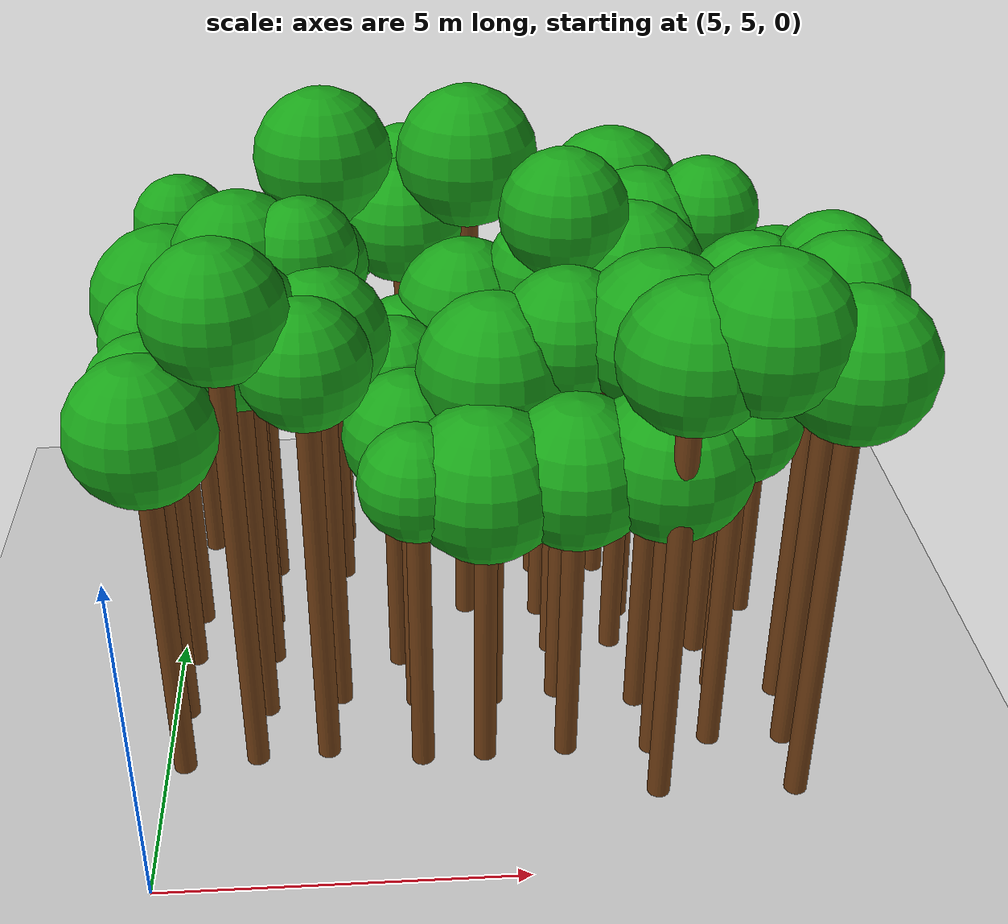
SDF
<sdf version="1.6">
 <world name="forest_world">
  <include><uri>model://sun</uri></include>
  <include><uri>model://ground_plane</uri></include>
  <model name="tree_1771_trunk">
   <static>true</static>
   <pose>5.23 7.35 2.51 0 0 0</pose>
   <link name="link">
    <collision name="collision">
     <geometry><cylinder><radius>0.16</radius><length>5.03</length></cylinder></geometry>
    </collision>
    <visual name="visual">
     <geometry><cylinder><radius>0.16</radius><length>5.03</length></cylinder></geometry>
     <material><ambient>0.35 0.20 0.05 1</ambient><diffuse>0.45 0.25 0.08 1</diffuse></material>
    </visual>
   </link>
  </model>
  <model name="tree_1771_leaf">
   <static>true</static>
   <pose>5.23 7.35 5.61 0 0 0</pose>
   <link name="link">
    <collision name="collision"><geometry><sphere><radius>0.98</radius></sphere></geometry></collision>
    <visual name="visual">
     <geometry><sphere><radius>0.98</radius></sphere></geometry>
     <material><ambient>0.05 0.45 0.05 1</ambient><diffuse>0.10 0.65 0.10 1</diffuse></material>
    </visual>
   </link>
  </model>
  <model name="tree_1772_trunk">
   <static>true</static>
   <pose>5.18 8.50 2.45 0 0 0</pose>
   <link name="link">
    <collision name="collision">
     <geometry><cylinder><radius>0.16</radius><length>4.91</length></cylinder></geometry>
    </collision>
    <visual name="visual">
     <geometry><cylinder><radius>0.16</radius><length>4.91</length></cylinder></geometry>
     <material><ambient>0.35 0.20 0.05 1</ambient><diffuse>0.45 0.25 0.08 1</diffuse></material>
    </visual>
   </link>
  </model>
  <model name="tree_1772_leaf">
   <static>true</static>
   <pose>5.18 8.50 5.43 0 0 0</pose>
   <link name="link">
    <collision name="collision"><geometry><sphere><radius>0.87</radius></sphere></geometry></collision>
    <visual name="visual">
     <geometry><sphere><radius>0.87</radius></sphere></geometry>
     <material><ambient>0.05 0.45 0.05 1</ambient><diffuse>0.10 0.65 0.10 1</diffuse></material>
    </visual>
   </link>
  </model>
  <model name="tree_1773_trunk">
   <static>true</static>
   <pose>5.19 9.73 2.55 0 0 0</pose>
   <link name="link">
    <collision name="collision">
     <geometry><cylinder><radius>0.16</radius><length>5.11</length></cylinder></geometry>
    </collision>
    <visual name="visual">
     <geometry><cylinder><radius>0.16</radius><length>5.11</length></cylinder></geometry>
     <material><ambient>0.35 0.20 0.05 1</ambient><diffuse>0.45 0.25 0.08 1</diffuse></material>
    </visual>
   </link>
  </model>
  <model name="tree_1773_leaf">
   <static>true</static>
   <pose>5.19 9.73 5.60 0 0 0</pose>
   <link name="link">
    <collision name="collision"><geometry><sphere><radius>0.83</radius></sphere></geometry></collision>
    <visual name="visual">
     <geometry><sphere><radius>0.83</radius></sphere></geometry>
     <material><ambient>0.05 0.45 0.05 1</ambient><diffuse>0.10 0.65 0.10 1</diffuse></material>
    </visual>
   </link>
  </model>
  <model name="tree_1774_trunk">
   <static>true</static>
   <pose>5.22 10.76 2.52 0 0 0</pose>
   <link name="link">
    <collision name="collision">
     <geometry><cylinder><radius>0.16</radius><length>5.03</length></cylinder></geometry>
    </collision>
    <visual name="visual">
     <geometry><cylinder><radius>0.16</radius><length>5.03</length></cylinder></geometry>
     <material><ambient>0.35 0.20 0.05 1</ambient><diffuse>0.45 0.25 0.08 1</diffuse></material>
    </visual>
   </link>
  </model>
  <model name="tree_1774_leaf">
   <static>true</static>
   <pose>5.22 10.76 5.69 0 0 0</pose>
   <link name="link">
    <collision name="collision"><geometry><sphere><radius>1.10</radius></sphere></geometry></collision>
    <visual name="visual">
     <geometry><sphere><radius>1.10</radius></sphere></geometry>
     <material><ambient>0.05 0.45 0.05 1</ambient><diffuse>0.10 0.65 0.10 1</diffuse></material>
    </visual>
   </link>
  </model>
  <model name="tree_1776_trunk">
   <static>true</static>
   <pose>5.26 12.77 2.79 0 0 0</pose>
   <link name="link">
    <collision name="collision">
     <geometry><cylinder><radius>0.16</radius><length>5.57</length></cylinder></geometry>
    </collision>
    <visual name="visual">
     <geometry><cylinder><radius>0.16</radius><length>5.57</length></cylinder></geometry>
     <material><ambient>0.35 0.20 0.05 1</ambient><diffuse>0.45 0.25 0.08 1</diffuse></material>
    </visual>
   </link>
  </model>
  <model name="tree_1776_leaf">
   <static>true</static>
   <pose>5.26 12.77 6.01 0 0 0</pose>
   <link name="link">
    <collision name="collision"><geometry><sphere><radius>0.73</radius></sphere></geometry></collision>
    <visual name="visual">
     <geometry><sphere><radius>0.73</radius></sphere></geometry>
     <material><ambient>0.05 0.45 0.05 1</ambient><diffuse>0.10 0.65 0.10 1</diffuse></material>
    </visual>
   </link>
  </model>
  <model name="tree_1826_trunk">
   <static>true</static>
   <pose>6.26 7.46 3.31 0 0 0</pose>
   <link name="link">
    <collision name="collision">
     <geometry><cylinder><radius>0.16</radius><length>6.63</length></cylinder></geometry>
    </collision>
    <visual name="visual">
     <geometry><cylinder><radius>0.16</radius><length>6.63</length></cylinder></geometry>
     <material><ambient>0.35 0.20 0.05 1</ambient><diffuse>0.45 0.25 0.08 1</diffuse></material>
    </visual>
   </link>
  </model>
  <model name="tree_1826_leaf">
   <static>true</static>
   <pose>6.26 7.46 7.17 0 0 0</pose>
   <link name="link">
    <collision name="collision"><geometry><sphere><radius>0.91</radius></sphere></geometry></collision>
    <visual name="visual">
     <geometry><sphere><radius>0.91</radius></sphere></geometry>
     <material><ambient>0.05 0.45 0.05 1</ambient><diffuse>0.10 0.65 0.10 1</diffuse></material>
    </visual>
   </link>
  </model>
  <model name="tree_1827_trunk">
   <static>true</static>
   <pose>6.36 8.48 2.87 0 0 0</pose>
   <link name="link">
    <collision name="collision">
     <geometry><cylinder><radius>0.16</radius><length>5.73</length></cylinder></geometry>
    </collision>
    <visual name="visual">
     <geometry><cylinder><radius>0.16</radius><length>5.73</length></cylinder></geometry>
     <material><ambient>0.35 0.20 0.05 1</ambient><diffuse>0.45 0.25 0.08 1</diffuse></material>
    </visual>
   </link>
  </model>
  <model name="tree_1827_leaf">
   <static>true</static>
   <pose>6.36 8.48 6.34 0 0 0</pose>
   <link name="link">
    <collision name="collision"><geometry><sphere><radius>1.01</radius></sphere></geometry></collision>
    <visual name="visual">
     <geometry><sphere><radius>1.01</radius></sphere></geometry>
     <material><ambient>0.05 0.45 0.05 1</ambient><diffuse>0.10 0.65 0.10 1</diffuse></material>
    </visual>
   </link>
  </model>
  <model name="tree_1828_trunk">
   <static>true</static>
   <pose>6.40 9.71 3.12 0 0 0</pose>
   <link name="link">
    <collision name="collision">
     <geometry><cylinder><radius>0.16</radius><length>6.24</length></cylinder></geometry>
    </collision>
    <visual name="visual">
     <geometry><cylinder><radius>0.16</radius><length>6.24</length></cylinder></geometry>
     <material><ambient>0.35 0.20 0.05 1</ambient><diffuse>0.45 0.25 0.08 1</diffuse></material>
    </visual>
   </link>
  </model>
  <model name="tree_1828_leaf">
   <static>true</static>
   <pose>6.40 9.71 6.80 0 0 0</pose>
   <link name="link">
    <collision name="collision"><geometry><sphere><radius>0.93</radius></sphere></geometry></collision>
    <visual name="visual">
     <geometry><sphere><radius>0.93</radius></sphere></geometry>
     <material><ambient>0.05 0.45 0.05 1</ambient><diffuse>0.10 0.65 0.10 1</diffuse></material>
    </visual>
   </link>
  </model>
  <model name="tree_1829_trunk">
   <static>true</static>
   <pose>6.35 10.60 2.45 0 0 0</pose>
   <link name="link">
    <collision name="collision">
     <geometry><cylinder><radius>0.16</radius><length>4.89</length></cylinder></geometry>
    </collision>
    <visual name="visual">
     <geometry><cylinder><radius>0.16</radius><length>4.89</length></cylinder></geometry>
     <material><ambient>0.35 0.20 0.05 1</ambient><diffuse>0.45 0.25 0.08 1</diffuse></material>
    </visual>
   </link>
  </model>
  <model name="tree_1829_leaf">
   <static>true</static>
   <pose>6.35 10.60 5.36 0 0 0</pose>
   <link name="link">
    <collision name="collision"><geometry><sphere><radius>0.77</radius></sphere></geometry></collision>
    <visual name="visual">
     <geometry><sphere><radius>0.77</radius></sphere></geometry>
     <material><ambient>0.05 0.45 0.05 1</ambient><diffuse>0.10 0.65 0.10 1</diffuse></material>
    </visual>
   </link>
  </model>
  <model name="tree_1830_trunk">
   <static>true</static>
   <pose>6.37 11.96 2.48 0 0 0</pose>
   <link name="link">
    <collision name="collision">
     <geometry><cylinder><radius>0.16</radius><length>4.96</length></cylinder></geometry>
    </collision>
    <visual name="visual">
     <geometry><cylinder><radius>0.16</radius><length>4.96</length></cylinder></geometry>
     <material><ambient>0.35 0.20 0.05 1</ambient><diffuse>0.45 0.25 0.08 1</diffuse></material>
    </visual>
   </link>
  </model>
  <model name="tree_1830_leaf">
   <static>true</static>
   <pose>6.37 11.96 5.47 0 0 0</pose>
   <link name="link">
    <collision name="collision"><geometry><sphere><radius>0.86</radius></sphere></geometry></collision>
    <visual name="visual">
     <geometry><sphere><radius>0.86</radius></sphere></geometry>
     <material><ambient>0.05 0.45 0.05 1</ambient><diffuse>0.10 0.65 0.10 1</diffuse></material>
    </visual>
   </link>
  </model>
  <model name="tree_1881_trunk">
   <static>true</static>
   <pose>7.28 7.54 2.94 0 0 0</pose>
   <link name="link">
    <collision name="collision">
     <geometry><cylinder><radius>0.16</radius><length>5.88</length></cylinder></geometry>
    </collision>
    <visual name="visual">
     <geometry><cylinder><radius>0.16</radius><length>5.88</length></cylinder></geometry>
     <material><ambient>0.35 0.20 0.05 1</ambient><diffuse>0.45 0.25 0.08 1</diffuse></material>
    </visual>
   </link>
  </model>
  <model name="tree_1881_leaf">
   <static>true</static>
   <pose>7.28 7.54 6.38 0 0 0</pose>
   <link name="link">
    <collision name="collision"><geometry><sphere><radius>0.85</radius></sphere></geometry></collision>
    <visual name="visual">
     <geometry><sphere><radius>0.85</radius></sphere></geometry>
     <material><ambient>0.05 0.45 0.05 1</ambient><diffuse>0.10 0.65 0.10 1</diffuse></material>
    </visual>
   </link>
  </model>
  <model name="tree_1882_trunk">
   <static>true</static>
   <pose>7.45 8.68 2.82 0 0 0</pose>
   <link name="link">
    <collision name="collision">
     <geometry><cylinder><radius>0.16</radius><length>5.63</length></cylinder></geometry>
    </collision>
    <visual name="visual">
     <geometry><cylinder><radius>0.16</radius><length>5.63</length></cylinder></geometry>
     <material><ambient>0.35 0.20 0.05 1</ambient><diffuse>0.45 0.25 0.08 1</diffuse></material>
    </visual>
   </link>
  </model>
  <model name="tree_1882_leaf">
   <static>true</static>
   <pose>7.45 8.68 6.18 0 0 0</pose>
   <link name="link">
    <collision name="collision"><geometry><sphere><radius>0.91</radius></sphere></geometry></collision>
    <visual name="visual">
     <geometry><sphere><radius>0.91</radius></sphere></geometry>
     <material><ambient>0.05 0.45 0.05 1</ambient><diffuse>0.10 0.65 0.10 1</diffuse></material>
    </visual>
   </link>
  </model>
  <model name="tree_1883_trunk">
   <static>true</static>
   <pose>7.24 9.52 3.26 0 0 0</pose>
   <link name="link">
    <collision name="collision">
     <geometry><cylinder><radius>0.16</radius><length>6.53</length></cylinder></geometry>
    </collision>
    <visual name="visual">
     <geometry><cylinder><radius>0.16</radius><length>6.53</length></cylinder></geometry>
     <material><ambient>0.35 0.20 0.05 1</ambient><diffuse>0.45 0.25 0.08 1</diffuse></material>
    </visual>
   </link>
  </model>
  <model name="tree_1883_leaf">
   <static>true</static>
   <pose>7.24 9.52 6.97 0 0 0</pose>
   <link name="link">
    <collision name="collision"><geometry><sphere><radius>0.74</radius></sphere></geometry></collision>
    <visual name="visual">
     <geometry><sphere><radius>0.74</radius></sphere></geometry>
     <material><ambient>0.05 0.45 0.05 1</ambient><diffuse>0.10 0.65 0.10 1</diffuse></material>
    </visual>
   </link>
  </model>
  <model name="tree_1884_trunk">
   <static>true</static>
   <pose>7.32 10.82 2.86 0 0 0</pose>
   <link name="link">
    <collision name="collision">
     <geometry><cylinder><radius>0.16</radius><length>5.73</length></cylinder></geometry>
    </collision>
    <visual name="visual">
     <geometry><cylinder><radius>0.16</radius><length>5.73</length></cylinder></geometry>
     <material><ambient>0.35 0.20 0.05 1</ambient><diffuse>0.45 0.25 0.08 1</diffuse></material>
    </visual>
   </link>
  </model>
  <model name="tree_1884_leaf">
   <static>true</static>
   <pose>7.32 10.82 6.19 0 0 0</pose>
   <link name="link">
    <collision name="collision"><geometry><sphere><radius>0.77</radius></sphere></geometry></collision>
    <visual name="visual">
     <geometry><sphere><radius>0.77</radius></sphere></geometry>
     <material><ambient>0.05 0.45 0.05 1</ambient><diffuse>0.10 0.65 0.10 1</diffuse></material>
    </visual>
   </link>
  </model>
  <model name="tree_1885_trunk">
   <static>true</static>
   <pose>7.48 11.84 3.40 0 0 0</pose>
   <link name="link">
    <collision name="collision">
     <geometry><cylinder><radius>0.16</radius><length>6.79</length></cylinder></geometry>
    </collision>
    <visual name="visual">
     <geometry><cylinder><radius>0.16</radius><length>6.79</length></cylinder></geometry>
     <material><ambient>0.35 0.20 0.05 1</ambient><diffuse>0.45 0.25 0.08 1</diffuse></material>
    </visual>
   </link>
  </model>
  <model name="tree_1885_leaf">
   <static>true</static>
   <pose>7.48 11.84 7.38 0 0 0</pose>
   <link name="link">
    <collision name="collision"><geometry><sphere><radius>0.99</radius></sphere></geometry></collision>
    <visual name="visual">
     <geometry><sphere><radius>0.99</radius></sphere></geometry>
     <material><ambient>0.05 0.45 0.05 1</ambient><diffuse>0.10 0.65 0.10 1</diffuse></material>
    </visual>
   </link>
  </model>
  <model name="tree_1886_trunk">
   <static>true</static>
   <pose>7.49 12.87 2.57 0 0 0</pose>
   <link name="link">
    <collision name="collision">
     <geometry><cylinder><radius>0.16</radius><length>5.13</length></cylinder></geometry>
    </collision>
    <visual name="visual">
     <geometry><cylinder><radius>0.16</radius><length>5.13</length></cylinder></geometry>
     <material><ambient>0.35 0.20 0.05 1</ambient><diffuse>0.45 0.25 0.08 1</diffuse></material>
    </visual>
   </link>
  </model>
  <model name="tree_1886_leaf">
   <static>true</static>
   <pose>7.49 12.87 5.60 0 0 0</pose>
   <link name="link">
    <collision name="collision"><geometry><sphere><radius>0.78</radius></sphere></geometry></collision>
    <visual name="visual">
     <geometry><sphere><radius>0.78</radius></sphere></geometry>
     <material><ambient>0.05 0.45 0.05 1</ambient><diffuse>0.10 0.65 0.10 1</diffuse></material>
    </visual>
   </link>
  </model>
  <model name="tree_1936_trunk">
   <static>true</static>
   <pose>8.63 7.31 2.14 0 0 0</pose>
   <link name="link">
    <collision name="collision">
     <geometry><cylinder><radius>0.16</radius><length>4.27</length></cylinder></geometry>
    </collision>
    <visual name="visual">
     <geometry><cylinder><radius>0.16</radius><length>4.27</length></cylinder></geometry>
     <material><ambient>0.35 0.20 0.05 1</ambient><diffuse>0.45 0.25 0.08 1</diffuse></material>
    </visual>
   </link>
  </model>
  <model name="tree_1936_leaf">
   <static>true</static>
   <pose>8.63 7.31 4.74 0 0 0</pose>
   <link name="link">
    <collision name="collision"><geometry><sphere><radius>0.78</radius></sphere></geometry></collision>
    <visual name="visual">
     <geometry><sphere><radius>0.78</radius></sphere></geometry>
     <material><ambient>0.05 0.45 0.05 1</ambient><diffuse>0.10 0.65 0.10 1</diffuse></material>
    </visual>
   </link>
  </model>
  <model name="tree_1937_trunk">
   <static>true</static>
   <pose>8.58 8.54 2.07 0 0 0</pose>
   <link name="link">
    <collision name="collision">
     <geometry><cylinder><radius>0.16</radius><length>4.13</length></cylinder></geometry>
    </collision>
    <visual name="visual">
     <geometry><cylinder><radius>0.16</radius><length>4.13</length></cylinder></geometry>
     <material><ambient>0.35 0.20 0.05 1</ambient><diffuse>0.45 0.25 0.08 1</diffuse></material>
    </visual>
   </link>
  </model>
  <model name="tree_1937_leaf">
   <static>true</static>
   <pose>8.58 8.54 4.69 0 0 0</pose>
   <link name="link">
    <collision name="collision"><geometry><sphere><radius>0.93</radius></sphere></geometry></collision>
    <visual name="visual">
     <geometry><sphere><radius>0.93</radius></sphere></geometry>
     <material><ambient>0.05 0.45 0.05 1</ambient><diffuse>0.10 0.65 0.10 1</diffuse></material>
    </visual>
   </link>
  </model>
  <model name="tree_1938_trunk">
   <static>true</static>
   <pose>8.35 9.54 2.28 0 0 0</pose>
   <link name="link">
    <collision name="collision">
     <geometry><cylinder><radius>0.16</radius><length>4.57</length></cylinder></geometry>
    </collision>
    <visual name="visual">
     <geometry><cylinder><radius>0.16</radius><length>4.57</length></cylinder></geometry>
     <material><ambient>0.35 0.20 0.05 1</ambient><diffuse>0.45 0.25 0.08 1</diffuse></material>
    </visual>
   </link>
  </model>
  <model name="tree_1938_leaf">
   <static>true</static>
   <pose>8.35 9.54 5.07 0 0 0</pose>
   <link name="link">
    <collision name="collision"><geometry><sphere><radius>0.84</radius></sphere></geometry></collision>
    <visual name="visual">
     <geometry><sphere><radius>0.84</radius></sphere></geometry>
     <material><ambient>0.05 0.45 0.05 1</ambient><diffuse>0.10 0.65 0.10 1</diffuse></material>
    </visual>
   </link>
  </model>
  <model name="tree_1939_trunk">
   <static>true</static>
   <pose>8.66 10.54 2.10 0 0 0</pose>
   <link name="link">
    <collision name="collision">
     <geometry><cylinder><radius>0.16</radius><length>4.19</length></cylinder></geometry>
    </collision>
    <visual name="visual">
     <geometry><cylinder><radius>0.16</radius><length>4.19</length></cylinder></geometry>
     <material><ambient>0.35 0.20 0.05 1</ambient><diffuse>0.45 0.25 0.08 1</diffuse></material>
    </visual>
   </link>
  </model>
  <model name="tree_1939_leaf">
   <static>true</static>
   <pose>8.66 10.54 4.77 0 0 0</pose>
   <link name="link">
    <collision name="collision"><geometry><sphere><radius>0.96</radius></sphere></geometry></collision>
    <visual name="visual">
     <geometry><sphere><radius>0.96</radius></sphere></geometry>
     <material><ambient>0.05 0.45 0.05 1</ambient><diffuse>0.10 0.65 0.10 1</diffuse></material>
    </visual>
   </link>
  </model>
  <model name="tree_1940_trunk">
   <static>true</static>
   <pose>8.60 11.83 2.91 0 0 0</pose>
   <link name="link">
    <collision name="collision">
     <geometry><cylinder><radius>0.16</radius><length>5.83</length></cylinder></geometry>
    </collision>
    <visual name="visual">
     <geometry><cylinder><radius>0.16</radius><length>5.83</length></cylinder></geometry>
     <material><ambient>0.35 0.20 0.05 1</ambient><diffuse>0.45 0.25 0.08 1</diffuse></material>
    </visual>
   </link>
  </model>
  <model name="tree_1940_leaf">
   <static>true</static>
   <pose>8.60 11.83 6.37 0 0 0</pose>
   <link name="link">
    <collision name="collision"><geometry><sphere><radius>0.91</radius></sphere></geometry></collision>
    <visual name="visual">
     <geometry><sphere><radius>0.91</radius></sphere></geometry>
     <material><ambient>0.05 0.45 0.05 1</ambient><diffuse>0.10 0.65 0.10 1</diffuse></material>
    </visual>
   </link>
  </model>
  <model name="tree_1941_trunk">
   <static>true</static>
   <pose>8.65 12.77 3.13 0 0 0</pose>
   <link name="link">
    <collision name="collision">
     <geometry><cylinder><radius>0.16</radius><length>6.25</length></cylinder></geometry>
    </collision>
    <visual name="visual">
     <geometry><cylinder><radius>0.16</radius><length>6.25</length></cylinder></geometry>
     <material><ambient>0.35 0.20 0.05 1</ambient><diffuse>0.45 0.25 0.08 1</diffuse></material>
    </visual>
   </link>
  </model>
  <model name="tree_1941_leaf">
   <static>true</static>
   <pose>8.65 12.77 6.71 0 0 0</pose>
   <link name="link">
    <collision name="collision"><geometry><sphere><radius>0.76</radius></sphere></geometry></collision>
    <visual name="visual">
     <geometry><sphere><radius>0.76</radius></sphere></geometry>
     <material><ambient>0.05 0.45 0.05 1</ambient><diffuse>0.10 0.65 0.10 1</diffuse></material>
    </visual>
   </link>
  </model>
  <model name="tree_1991_trunk">
   <static>true</static>
   <pose>9.52 7.35 2.02 0 0 0</pose>
   <link name="link">
    <collision name="collision">
     <geometry><cylinder><radius>0.16</radius><length>4.05</length></cylinder></geometry>
    </collision>
    <visual name="visual">
     <geometry><cylinder><radius>0.16</radius><length>4.05</length></cylinder></geometry>
     <material><ambient>0.35 0.20 0.05 1</ambient><diffuse>0.45 0.25 0.08 1</diffuse></material>
    </visual>
   </link>
  </model>
  <model name="tree_1991_leaf">
   <static>true</static>
   <pose>9.52 7.35 4.69 0 0 0</pose>
   <link name="link">
    <collision name="collision"><geometry><sphere><radius>1.07</radius></sphere></geometry></collision>
    <visual name="visual">
     <geometry><sphere><radius>1.07</radius></sphere></geometry>
     <material><ambient>0.05 0.45 0.05 1</ambient><diffuse>0.10 0.65 0.10 1</diffuse></material>
    </visual>
   </link>
  </model>
  <model name="tree_1992_trunk">
   <static>true</static>
   <pose>9.70 8.52 2.53 0 0 0</pose>
   <link name="link">
    <collision name="collision">
     <geometry><cylinder><radius>0.16</radius><length>5.06</length></cylinder></geometry>
    </collision>
    <visual name="visual">
     <geometry><cylinder><radius>0.16</radius><length>5.06</length></cylinder></geometry>
     <material><ambient>0.35 0.20 0.05 1</ambient><diffuse>0.45 0.25 0.08 1</diffuse></material>
    </visual>
   </link>
  </model>
  <model name="tree_1992_leaf">
   <static>true</static>
   <pose>9.70 8.52 5.69 0 0 0</pose>
   <link name="link">
    <collision name="collision"><geometry><sphere><radius>1.04</radius></sphere></geometry></collision>
    <visual name="visual">
     <geometry><sphere><radius>1.04</radius></sphere></geometry>
     <material><ambient>0.05 0.45 0.05 1</ambient><diffuse>0.10 0.65 0.10 1</diffuse></material>
    </visual>
   </link>
  </model>
  <model name="tree_1993_trunk">
   <static>true</static>
   <pose>9.76 9.62 2.22 0 0 0</pose>
   <link name="link">
    <collision name="collision">
     <geometry><cylinder><radius>0.16</radius><length>4.44</length></cylinder></geometry>
    </collision>
    <visual name="visual">
     <geometry><cylinder><radius>0.16</radius><length>4.44</length></cylinder></geometry>
     <material><ambient>0.35 0.20 0.05 1</ambient><diffuse>0.45 0.25 0.08 1</diffuse></material>
    </visual>
   </link>
  </model>
  <model name="tree_1993_leaf">
   <static>true</static>
   <pose>9.76 9.62 4.97 0 0 0</pose>
   <link name="link">
    <collision name="collision"><geometry><sphere><radius>0.87</radius></sphere></geometry></collision>
    <visual name="visual">
     <geometry><sphere><radius>0.87</radius></sphere></geometry>
     <material><ambient>0.05 0.45 0.05 1</ambient><diffuse>0.10 0.65 0.10 1</diffuse></material>
    </visual>
   </link>
  </model>
  <model name="tree_1994_trunk">
   <static>true</static>
   <pose>9.44 10.78 2.46 0 0 0</pose>
   <link name="link">
    <collision name="collision">
     <geometry><cylinder><radius>0.16</radius><length>4.91</length></cylinder></geometry>
    </collision>
    <visual name="visual">
     <geometry><cylinder><radius>0.16</radius><length>4.91</length></cylinder></geometry>
     <material><ambient>0.35 0.20 0.05 1</ambient><diffuse>0.45 0.25 0.08 1</diffuse></material>
    </visual>
   </link>
  </model>
  <model name="tree_1994_leaf">
   <static>true</static>
   <pose>9.44 10.78 5.50 0 0 0</pose>
   <link name="link">
    <collision name="collision"><geometry><sphere><radius>0.98</radius></sphere></geometry></collision>
    <visual name="visual">
     <geometry><sphere><radius>0.98</radius></sphere></geometry>
     <material><ambient>0.05 0.45 0.05 1</ambient><diffuse>0.10 0.65 0.10 1</diffuse></material>
    </visual>
   </link>
  </model>
  <model name="tree_1995_trunk">
   <static>true</static>
   <pose>9.53 11.64 3.41 0 0 0</pose>
   <link name="link">
    <collision name="collision">
     <geometry><cylinder><radius>0.16</radius><length>6.82</length></cylinder></geometry>
    </collision>
    <visual name="visual">
     <geometry><cylinder><radius>0.16</radius><length>6.82</length></cylinder></geometry>
     <material><ambient>0.35 0.20 0.05 1</ambient><diffuse>0.45 0.25 0.08 1</diffuse></material>
    </visual>
   </link>
  </model>
  <model name="tree_1995_leaf">
   <static>true</static>
   <pose>9.53 11.64 7.42 0 0 0</pose>
   <link name="link">
    <collision name="collision"><geometry><sphere><radius>1.01</radius></sphere></geometry></collision>
    <visual name="visual">
     <geometry><sphere><radius>1.01</radius></sphere></geometry>
     <material><ambient>0.05 0.45 0.05 1</ambient><diffuse>0.10 0.65 0.10 1</diffuse></material>
    </visual>
   </link>
  </model>
  <model name="tree_1996_trunk">
   <static>true</static>
   <pose>9.57 13.00 2.51 0 0 0</pose>
   <link name="link">
    <collision name="collision">
     <geometry><cylinder><radius>0.16</radius><length>5.02</length></cylinder></geometry>
    </collision>
    <visual name="visual">
     <geometry><cylinder><radius>0.16</radius><length>5.02</length></cylinder></geometry>
     <material><ambient>0.35 0.20 0.05 1</ambient><diffuse>0.45 0.25 0.08 1</diffuse></material>
    </visual>
   </link>
  </model>
  <model name="tree_2046_trunk">
   <static>true</static>
   <pose>10.69 7.39 2.08 0 0 0</pose>
   <link name="link">
    <collision name="collision">
     <geometry><cylinder><radius>0.16</radius><length>4.16</length></cylinder></geometry>
    </collision>
    <visual name="visual">
     <geometry><cylinder><radius>0.16</radius><length>4.16</length></cylinder></geometry>
     <material><ambient>0.35 0.20 0.05 1</ambient><diffuse>0.45 0.25 0.08 1</diffuse></material>
    </visual>
   </link>
  </model>
  <model name="tree_2046_leaf">
   <static>true</static>
   <pose>10.69 7.39 4.78 0 0 0</pose>
   <link name="link">
    <collision name="collision"><geometry><sphere><radius>1.04</radius></sphere></geometry></collision>
    <visual name="visual">
     <geometry><sphere><radius>1.04</radius></sphere></geometry>
     <material><ambient>0.05 0.45 0.05 1</ambient><diffuse>0.10 0.65 0.10 1</diffuse></material>
    </visual>
   </link>
  </model>
  <model name="tree_2047_trunk">
   <static>true</static>
   <pose>10.67 8.64 2.78 0 0 0</pose>
   <link name="link">
    <collision name="collision">
     <geometry><cylinder><radius>0.16</radius><length>5.57</length></cylinder></geometry>
    </collision>
    <visual name="visual">
     <geometry><cylinder><radius>0.16</radius><length>5.57</length></cylinder></geometry>
     <material><ambient>0.35 0.20 0.05 1</ambient><diffuse>0.45 0.25 0.08 1</diffuse></material>
    </visual>
   </link>
  </model>
  <model name="tree_2047_leaf">
   <static>true</static>
   <pose>10.67 8.64 6.11 0 0 0</pose>
   <link name="link">
    <collision name="collision"><geometry><sphere><radius>0.91</radius></sphere></geometry></collision>
    <visual name="visual">
     <geometry><sphere><radius>0.91</radius></sphere></geometry>
     <material><ambient>0.05 0.45 0.05 1</ambient><diffuse>0.10 0.65 0.10 1</diffuse></material>
    </visual>
   </link>
  </model>
  <model name="tree_2048_trunk">
   <static>true</static>
   <pose>10.70 9.69 3.42 0 0 0</pose>
   <link name="link">
    <collision name="collision">
     <geometry><cylinder><radius>0.16</radius><length>6.84</length></cylinder></geometry>
    </collision>
    <visual name="visual">
     <geometry><cylinder><radius>0.16</radius><length>6.84</length></cylinder></geometry>
     <material><ambient>0.35 0.20 0.05 1</ambient><diffuse>0.45 0.25 0.08 1</diffuse></material>
    </visual>
   </link>
  </model>
  <model name="tree_2048_leaf">
   <static>true</static>
   <pose>10.70 9.69 7.36 0 0 0</pose>
   <link name="link">
    <collision name="collision"><geometry><sphere><radius>0.87</radius></sphere></geometry></collision>
    <visual name="visual">
     <geometry><sphere><radius>0.87</radius></sphere></geometry>
     <material><ambient>0.05 0.45 0.05 1</ambient><diffuse>0.10 0.65 0.10 1</diffuse></material>
    </visual>
   </link>
  </model>
  <model name="tree_2049_trunk">
   <static>true</static>
   <pose>10.60 10.64 2.75 0 0 0</pose>
   <link name="link">
    <collision name="collision">
     <geometry><cylinder><radius>0.16</radius><length>5.49</length></cylinder></geometry>
    </collision>
    <visual name="visual">
     <geometry><cylinder><radius>0.16</radius><length>5.49</length></cylinder></geometry>
     <material><ambient>0.35 0.20 0.05 1</ambient><diffuse>0.45 0.25 0.08 1</diffuse></material>
    </visual>
   </link>
  </model>
  <model name="tree_2049_leaf">
   <static>true</static>
   <pose>10.60 10.64 6.02 0 0 0</pose>
   <link name="link">
    <collision name="collision"><geometry><sphere><radius>0.88</radius></sphere></geometry></collision>
    <visual name="visual">
     <geometry><sphere><radius>0.88</radius></sphere></geometry>
     <material><ambient>0.05 0.45 0.05 1</ambient><diffuse>0.10 0.65 0.10 1</diffuse></material>
    </visual>
   </link>
  </model>
  <model name="tree_2050_trunk">
   <static>true</static>
   <pose>10.63 11.79 2.40 0 0 0</pose>
   <link name="link">
    <collision name="collision">
     <geometry><cylinder><radius>0.16</radius><length>4.80</length></cylinder></geometry>
    </collision>
    <visual name="visual">
     <geometry><cylinder><radius>0.16</radius><length>4.80</length></cylinder></geometry>
     <material><ambient>0.35 0.20 0.05 1</ambient><diffuse>0.45 0.25 0.08 1</diffuse></material>
    </visual>
   </link>
  </model>
  <model name="tree_2050_leaf">
   <static>true</static>
   <pose>10.63 11.79 5.34 0 0 0</pose>
   <link name="link">
    <collision name="collision"><geometry><sphere><radius>0.90</radius></sphere></geometry></collision>
    <visual name="visual">
     <geometry><sphere><radius>0.90</radius></sphere></geometry>
     <material><ambient>0.05 0.45 0.05 1</ambient><diffuse>0.10 0.65 0.10 1</diffuse></material>
    </visual>
   </link>
  </model>
  <model name="tree_2100_trunk">
   <static>true</static>
   <pose>11.90 6.46 3.17 0 0 0</pose>
   <link name="link">
    <collision name="collision">
     <geometry><cylinder><radius>0.16</radius><length>6.34</length></cylinder></geometry>
    </collision>
    <visual name="visual">
     <geometry><cylinder><radius>0.16</radius><length>6.34</length></cylinder></geometry>
     <material><ambient>0.35 0.20 0.05 1</ambient><diffuse>0.45 0.25 0.08 1</diffuse></material>
    </visual>
   </link>
  </model>
  <model name="tree_2100_leaf">
   <static>true</static>
   <pose>11.90 6.46 6.92 0 0 0</pose>
   <link name="link">
    <collision name="collision"><geometry><sphere><radius>0.96</radius></sphere></geometry></collision>
    <visual name="visual">
     <geometry><sphere><radius>0.96</radius></sphere></geometry>
     <material><ambient>0.05 0.45 0.05 1</ambient><diffuse>0.10 0.65 0.10 1</diffuse></material>
    </visual>
   </link>
  </model>
  <model name="tree_2101_trunk">
   <static>true</static>
   <pose>11.92 7.33 2.15 0 0 0</pose>
   <link name="link">
    <collision name="collision">
     <geometry><cylinder><radius>0.16</radius><length>4.29</length></cylinder></geometry>
    </collision>
    <visual name="visual">
     <geometry><cylinder><radius>0.16</radius><length>4.29</length></cylinder></geometry>
     <material><ambient>0.35 0.20 0.05 1</ambient><diffuse>0.45 0.25 0.08 1</diffuse></material>
    </visual>
   </link>
  </model>
  <model name="tree_2101_leaf">
   <static>true</static>
   <pose>11.92 7.33 4.95 0 0 0</pose>
   <link name="link">
    <collision name="collision"><geometry><sphere><radius>1.09</radius></sphere></geometry></collision>
    <visual name="visual">
     <geometry><sphere><radius>1.09</radius></sphere></geometry>
     <material><ambient>0.05 0.45 0.05 1</ambient><diffuse>0.10 0.65 0.10 1</diffuse></material>
    </visual>
   </link>
  </model>
  <model name="tree_2102_trunk">
   <static>true</static>
   <pose>11.84 8.37 2.79 0 0 0</pose>
   <link name="link">
    <collision name="collision">
     <geometry><cylinder><radius>0.16</radius><length>5.59</length></cylinder></geometry>
    </collision>
    <visual name="visual">
     <geometry><cylinder><radius>0.16</radius><length>5.59</length></cylinder></geometry>
     <material><ambient>0.35 0.20 0.05 1</ambient><diffuse>0.45 0.25 0.08 1</diffuse></material>
    </visual>
   </link>
  </model>
  <model name="tree_2102_leaf">
   <static>true</static>
   <pose>11.84 8.37 6.24 0 0 0</pose>
   <link name="link">
    <collision name="collision"><geometry><sphere><radius>1.09</radius></sphere></geometry></collision>
    <visual name="visual">
     <geometry><sphere><radius>1.09</radius></sphere></geometry>
     <material><ambient>0.05 0.45 0.05 1</ambient><diffuse>0.10 0.65 0.10 1</diffuse></material>
    </visual>
   </link>
  </model>
  <model name="tree_2103_trunk">
   <static>true</static>
   <pose>11.65 9.77 2.91 0 0 0</pose>
   <link name="link">
    <collision name="collision">
     <geometry><cylinder><radius>0.16</radius><length>5.82</length></cylinder></geometry>
    </collision>
    <visual name="visual">
     <geometry><cylinder><radius>0.16</radius><length>5.82</length></cylinder></geometry>
     <material><ambient>0.35 0.20 0.05 1</ambient><diffuse>0.45 0.25 0.08 1</diffuse></material>
    </visual>
   </link>
  </model>
  <model name="tree_2103_leaf">
   <static>true</static>
   <pose>11.65 9.77 6.42 0 0 0</pose>
   <link name="link">
    <collision name="collision"><geometry><sphere><radius>1.01</radius></sphere></geometry></collision>
    <visual name="visual">
     <geometry><sphere><radius>1.01</radius></sphere></geometry>
     <material><ambient>0.05 0.45 0.05 1</ambient><diffuse>0.10 0.65 0.10 1</diffuse></material>
    </visual>
   </link>
  </model>
  <model name="tree_2104_trunk">
   <static>true</static>
   <pose>11.87 10.53 2.96 0 0 0</pose>
   <link name="link">
    <collision name="collision">
     <geometry><cylinder><radius>0.16</radius><length>5.92</length></cylinder></geometry>
    </collision>
    <visual name="visual">
     <geometry><cylinder><radius>0.16</radius><length>5.92</length></cylinder></geometry>
     <material><ambient>0.35 0.20 0.05 1</ambient><diffuse>0.45 0.25 0.08 1</diffuse></material>
    </visual>
   </link>
  </model>
  <model name="tree_2104_leaf">
   <static>true</static>
   <pose>11.87 10.53 6.54 0 0 0</pose>
   <link name="link">
    <collision name="collision"><geometry><sphere><radius>1.04</radius></sphere></geometry></collision>
    <visual name="visual">
     <geometry><sphere><radius>1.04</radius></sphere></geometry>
     <material><ambient>0.05 0.45 0.05 1</ambient><diffuse>0.10 0.65 0.10 1</diffuse></material>
    </visual>
   </link>
  </model>
  <model name="tree_2105_trunk">
   <static>true</static>
   <pose>11.63 11.77 3.03 0 0 0</pose>
   <link name="link">
    <collision name="collision">
     <geometry><cylinder><radius>0.16</radius><length>6.06</length></cylinder></geometry>
    </collision>
    <visual name="visual">
     <geometry><cylinder><radius>0.16</radius><length>6.06</length></cylinder></geometry>
     <material><ambient>0.35 0.20 0.05 1</ambient><diffuse>0.45 0.25 0.08 1</diffuse></material>
    </visual>
   </link>
  </model>
  <model name="tree_2105_leaf">
   <static>true</static>
   <pose>11.63 11.77 6.68 0 0 0</pose>
   <link name="link">
    <collision name="collision"><geometry><sphere><radius>1.03</radius></sphere></geometry></collision>
    <visual name="visual">
     <geometry><sphere><radius>1.03</radius></sphere></geometry>
     <material><ambient>0.05 0.45 0.05 1</ambient><diffuse>0.10 0.65 0.10 1</diffuse></material>
    </visual>
   </link>
  </model>
  <model name="tree_2106_trunk">
   <static>true</static>
   <pose>11.70 12.72 2.23 0 0 0</pose>
   <link name="link">
    <collision name="collision">
     <geometry><cylinder><radius>0.16</radius><length>4.46</length></cylinder></geometry>
    </collision>
    <visual name="visual">
     <geometry><cylinder><radius>0.16</radius><length>4.46</length></cylinder></geometry>
     <material><ambient>0.35 0.20 0.05 1</ambient><diffuse>0.45 0.25 0.08 1</diffuse></material>
    </visual>
   </link>
  </model>
  <model name="tree_2106_leaf">
   <static>true</static>
   <pose>11.70 12.72 4.98 0 0 0</pose>
   <link name="link">
    <collision name="collision"><geometry><sphere><radius>0.86</radius></sphere></geometry></collision>
    <visual name="visual">
     <geometry><sphere><radius>0.86</radius></sphere></geometry>
     <material><ambient>0.05 0.45 0.05 1</ambient><diffuse>0.10 0.65 0.10 1</diffuse></material>
    </visual>
   </link>
  </model>
  <model name="tree_2155_leaf">
   <static>true</static>
   <pose>12.75 6.37 7.25 0 0 0</pose>
   <link name="link">
    <collision name="collision"><geometry><sphere><radius>1.00</radius></sphere></geometry></collision>
    <visual name="visual">
     <geometry><sphere><radius>1.00</radius></sphere></geometry>
     <material><ambient>0.05 0.45 0.05 1</ambient><diffuse>0.10 0.65 0.10 1</diffuse></material>
    </visual>
   </link>
  </model>
  <model name="tree_2156_trunk">
   <static>true</static>
   <pose>12.79 7.47 2.45 0 0 0</pose>
   <link name="link">
    <collision name="collision">
     <geometry><cylinder><radius>0.16</radius><length>4.90</length></cylinder></geometry>
    </collision>
    <visual name="visual">
     <geometry><cylinder><radius>0.16</radius><length>4.90</length></cylinder></geometry>
     <material><ambient>0.35 0.20 0.05 1</ambient><diffuse>0.45 0.25 0.08 1</diffuse></material>
    </visual>
   </link>
  </model>
  <model name="tree_2156_leaf">
   <static>true</static>
   <pose>12.79 7.47 5.37 0 0 0</pose>
   <link name="link">
    <collision name="collision"><geometry><sphere><radius>0.79</radius></sphere></geometry></collision>
    <visual name="visual">
     <geometry><sphere><radius>0.79</radius></sphere></geometry>
     <material><ambient>0.05 0.45 0.05 1</ambient><diffuse>0.10 0.65 0.10 1</diffuse></material>
    </visual>
   </link>
  </model>
  <model name="tree_2157_trunk">
   <static>true</static>
   <pose>13.06 8.67 3.01 0 0 0</pose>
   <link name="link">
    <collision name="collision">
     <geometry><cylinder><radius>0.16</radius><length>6.02</length></cylinder></geometry>
    </collision>
    <visual name="visual">
     <geometry><cylinder><radius>0.16</radius><length>6.02</length></cylinder></geometry>
     <material><ambient>0.35 0.20 0.05 1</ambient><diffuse>0.45 0.25 0.08 1</diffuse></material>
    </visual>
   </link>
  </model>
  <model name="tree_2157_leaf">
   <static>true</static>
   <pose>13.06 8.67 6.55 0 0 0</pose>
   <link name="link">
    <collision name="collision"><geometry><sphere><radius>0.87</radius></sphere></geometry></collision>
    <visual name="visual">
     <geometry><sphere><radius>0.87</radius></sphere></geometry>
     <material><ambient>0.05 0.45 0.05 1</ambient><diffuse>0.10 0.65 0.10 1</diffuse></material>
    </visual>
   </link>
  </model>
  <model name="tree_2158_trunk">
   <static>true</static>
   <pose>12.97 9.58 2.42 0 0 0</pose>
   <link name="link">
    <collision name="collision">
     <geometry><cylinder><radius>0.16</radius><length>4.85</length></cylinder></geometry>
    </collision>
    <visual name="visual">
     <geometry><cylinder><radius>0.16</radius><length>4.85</length></cylinder></geometry>
     <material><ambient>0.35 0.20 0.05 1</ambient><diffuse>0.45 0.25 0.08 1</diffuse></material>
    </visual>
   </link>
  </model>
  <model name="tree_2158_leaf">
   <static>true</static>
   <pose>12.97 9.58 5.49 0 0 0</pose>
   <link name="link">
    <collision name="collision"><geometry><sphere><radius>1.07</radius></sphere></geometry></collision>
    <visual name="visual">
     <geometry><sphere><radius>1.07</radius></sphere></geometry>
     <material><ambient>0.05 0.45 0.05 1</ambient><diffuse>0.10 0.65 0.10 1</diffuse></material>
    </visual>
   </link>
  </model>
  <model name="tree_2159_trunk">
   <static>true</static>
   <pose>12.76 10.55 3.24 0 0 0</pose>
   <link name="link">
    <collision name="collision">
     <geometry><cylinder><radius>0.16</radius><length>6.48</length></cylinder></geometry>
    </collision>
    <visual name="visual">
     <geometry><cylinder><radius>0.16</radius><length>6.48</length></cylinder></geometry>
     <material><ambient>0.35 0.20 0.05 1</ambient><diffuse>0.45 0.25 0.08 1</diffuse></material>
    </visual>
   </link>
  </model>
  <model name="tree_2159_leaf">
   <static>true</static>
   <pose>12.76 10.55 6.95 0 0 0</pose>
   <link name="link">
    <collision name="collision"><geometry><sphere><radius>0.77</radius></sphere></geometry></collision>
    <visual name="visual">
     <geometry><sphere><radius>0.77</radius></sphere></geometry>
     <material><ambient>0.05 0.45 0.05 1</ambient><diffuse>0.10 0.65 0.10 1</diffuse></material>
    </visual>
   </link>
  </model>
  <model name="tree_2160_trunk">
   <static>true</static>
   <pose>12.79 11.79 2.35 0 0 0</pose>
   <link name="link">
    <collision name="collision">
     <geometry><cylinder><radius>0.16</radius><length>4.71</length></cylinder></geometry>
    </collision>
    <visual name="visual">
     <geometry><cylinder><radius>0.16</radius><length>4.71</length></cylinder></geometry>
     <material><ambient>0.35 0.20 0.05 1</ambient><diffuse>0.45 0.25 0.08 1</diffuse></material>
    </visual>
   </link>
  </model>
  <model name="tree_2160_leaf">
   <static>true</static>
   <pose>12.79 11.79 5.21 0 0 0</pose>
   <link name="link">
    <collision name="collision"><geometry><sphere><radius>0.83</radius></sphere></geometry></collision>
    <visual name="visual">
     <geometry><sphere><radius>0.83</radius></sphere></geometry>
     <material><ambient>0.05 0.45 0.05 1</ambient><diffuse>0.10 0.65 0.10 1</diffuse></material>
    </visual>
   </link>
  </model>
  <model name="tree_2161_trunk">
   <static>true</static>
   <pose>12.95 12.79 2.46 0 0 0</pose>
   <link name="link">
    <collision name="collision">
     <geometry><cylinder><radius>0.16</radius><length>4.93</length></cylinder></geometry>
    </collision>
    <visual name="visual">
     <geometry><cylinder><radius>0.16</radius><length>4.93</length></cylinder></geometry>
     <material><ambient>0.35 0.20 0.05 1</ambient><diffuse>0.45 0.25 0.08 1</diffuse></material>
    </visual>
   </link>
  </model>
  <model name="tree_2161_leaf">
   <static>true</static>
   <pose>12.95 12.79 5.43 0 0 0</pose>
   <link name="link">
    <collision name="collision"><geometry><sphere><radius>0.84</radius></sphere></geometry></collision>
    <visual name="visual">
     <geometry><sphere><radius>0.84</radius></sphere></geometry>
     <material><ambient>0.05 0.45 0.05 1</ambient><diffuse>0.10 0.65 0.10 1</diffuse></material>
    </visual>
   </link>
  </model>
  <model name="tree_2210_trunk">
   <static>true</static>
   <pose>13.83 6.39 3.10 0 0 0</pose>
   <link name="link">
    <collision name="collision">
     <geometry><cylinder><radius>0.16</radius><length>6.20</length></cylinder></geometry>
    </collision>
    <visual name="visual">
     <geometry><cylinder><radius>0.16</radius><length>6.20</length></cylinder></geometry>
     <material><ambient>0.35 0.20 0.05 1</ambient><diffuse>0.45 0.25 0.08 1</diffuse></material>
    </visual>
   </link>
  </model>
  <model name="tree_2210_leaf">
   <static>true</static>
   <pose>13.83 6.39 6.78 0 0 0</pose>
   <link name="link">
    <collision name="collision"><geometry><sphere><radius>0.97</radius></sphere></geometry></collision>
    <visual name="visual">
     <geometry><sphere><radius>0.97</radius></sphere></geometry>
     <material><ambient>0.05 0.45 0.05 1</ambient><diffuse>0.10 0.65 0.10 1</diffuse></material>
    </visual>
   </link>
  </model>
  <model name="tree_2211_trunk">
   <static>true</static>
   <pose>13.87 7.42 3.34 0 0 0</pose>
   <link name="link">
    <collision name="collision">
     <geometry><cylinder><radius>0.16</radius><length>6.68</length></cylinder></geometry>
    </collision>
    <visual name="visual">
     <geometry><cylinder><radius>0.16</radius><length>6.68</length></cylinder></geometry>
     <material><ambient>0.35 0.20 0.05 1</ambient><diffuse>0.45 0.25 0.08 1</diffuse></material>
    </visual>
   </link>
  </model>
  <model name="tree_2211_leaf">
   <static>true</static>
   <pose>13.87 7.42 7.16 0 0 0</pose>
   <link name="link">
    <collision name="collision"><geometry><sphere><radius>0.80</radius></sphere></geometry></collision>
    <visual name="visual">
     <geometry><sphere><radius>0.80</radius></sphere></geometry>
     <material><ambient>0.05 0.45 0.05 1</ambient><diffuse>0.10 0.65 0.10 1</diffuse></material>
    </visual>
   </link>
  </model>
  <model name="tree_2212_trunk">
   <static>true</static>
   <pose>13.99 8.46 3.29 0 0 0</pose>
   <link name="link">
    <collision name="collision">
     <geometry><cylinder><radius>0.16</radius><length>6.58</length></cylinder></geometry>
    </collision>
    <visual name="visual">
     <geometry><cylinder><radius>0.16</radius><length>6.58</length></cylinder></geometry>
     <material><ambient>0.35 0.20 0.05 1</ambient><diffuse>0.45 0.25 0.08 1</diffuse></material>
    </visual>
   </link>
  </model>
  <model name="tree_2212_leaf">
   <static>true</static>
   <pose>13.99 8.46 7.03 0 0 0</pose>
   <link name="link">
    <collision name="collision"><geometry><sphere><radius>0.75</radius></sphere></geometry></collision>
    <visual name="visual">
     <geometry><sphere><radius>0.75</radius></sphere></geometry>
     <material><ambient>0.05 0.45 0.05 1</ambient><diffuse>0.10 0.65 0.10 1</diffuse></material>
    </visual>
   </link>
  </model>
  <model name="tree_2214_trunk">
   <static>true</static>
   <pose>13.88 10.54 2.51 0 0 0</pose>
   <link name="link">
    <collision name="collision">
     <geometry><cylinder><radius>0.16</radius><length>5.02</length></cylinder></geometry>
    </collision>
    <visual name="visual">
     <geometry><cylinder><radius>0.16</radius><length>5.02</length></cylinder></geometry>
     <material><ambient>0.35 0.20 0.05 1</ambient><diffuse>0.45 0.25 0.08 1</diffuse></material>
    </visual>
   </link>
  </model>
  <model name="tree_2214_leaf">
   <static>true</static>
   <pose>13.88 10.54 5.62 0 0 0</pose>
   <link name="link">
    <collision name="collision"><geometry><sphere><radius>1.01</radius></sphere></geometry></collision>
    <visual name="visual">
     <geometry><sphere><radius>1.01</radius></sphere></geometry>
     <material><ambient>0.05 0.45 0.05 1</ambient><diffuse>0.10 0.65 0.10 1</diffuse></material>
    </visual>
   </link>
  </model>
 </world>
</sdf>
